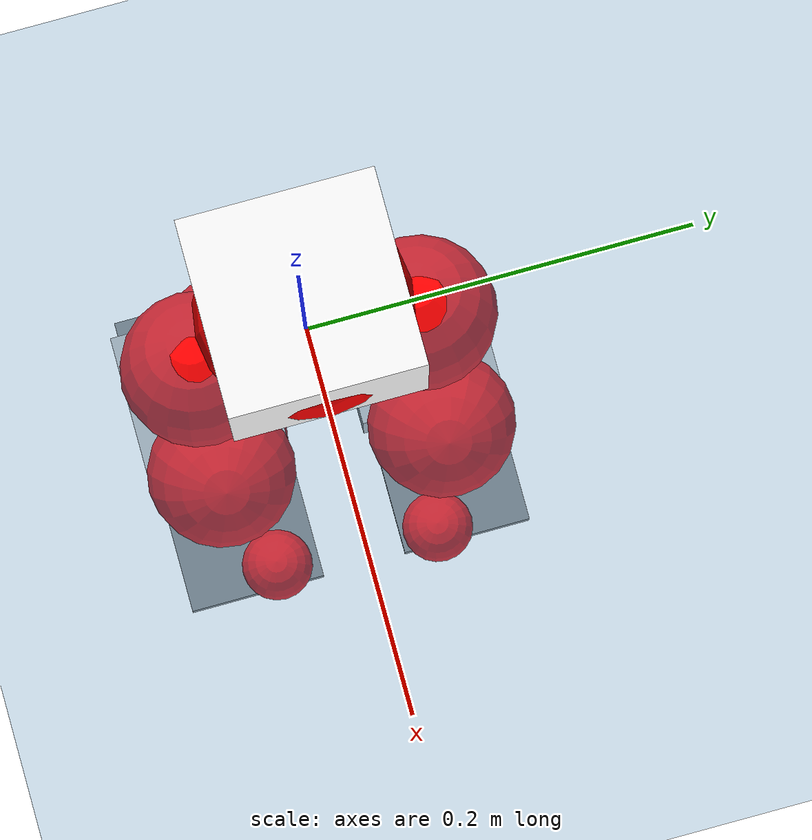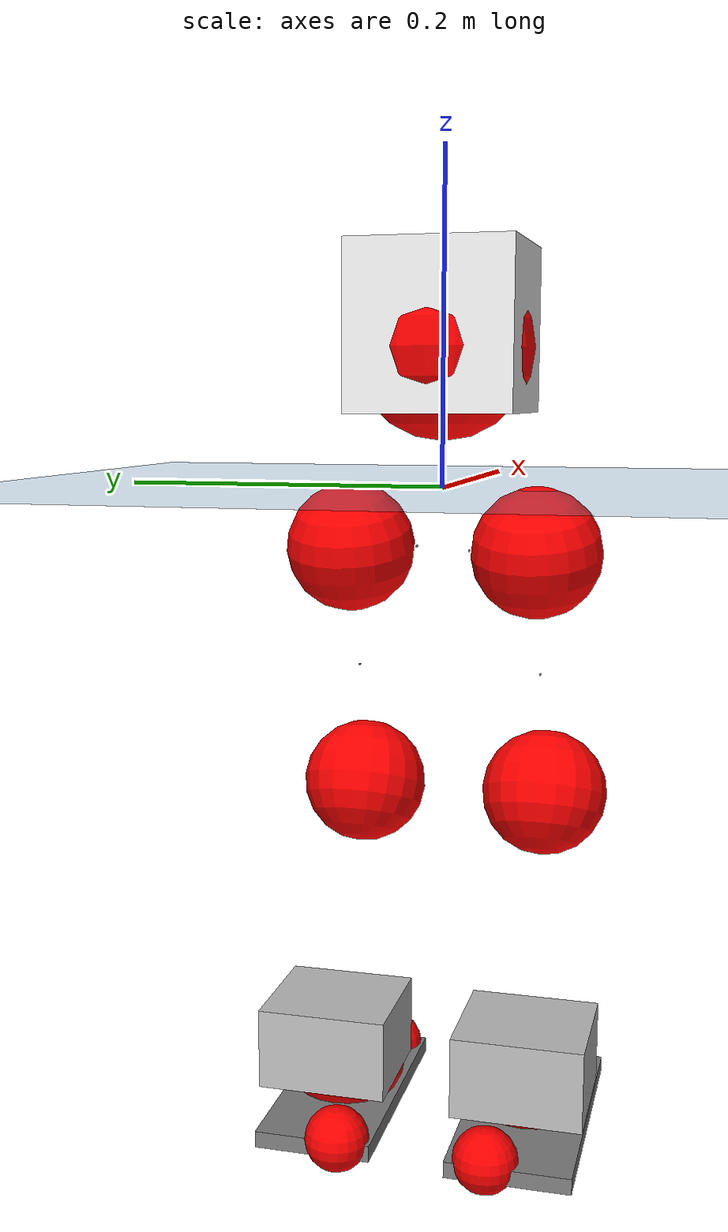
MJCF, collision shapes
<mujoco model="pi_12dof_release_v1">
  <compiler angle="radian" assetdir="assets" balanceinertia="true" inertiafromgeom="false"/>

  <option timestep="0.005" density="1.2" viscosity="2e-05"/>

  <size nkey="1"/>

  <visual>
    <quality shadowsize="8192"/>
    <map shadowclip="0.5"/>
  </visual>

  <default>
    <default class="/">
      <joint armature="0.01" damping="0.01" frictionloss="0.01"/>
      <geom contype="0" conaffinity="0" group="1" solref="-1000 -80"/>
      <site size="0.01 0.005 0.005" group="5"/>
      <general forcelimited="true" biastype="affine" gainprm="20" biasprm="0 -20 -0.5"/>
      <default class="foot">
        <geom size="0.0845 0.036 0.005" type="box" condim="6" group="4" priority="1" friction="0.9 0.2 0.2" solimp="0.015 1 0.005"/>
      </default>
      <default class="reward_collision_sphere">
        <geom group="5" rgba="1 0 0 1"/>
      </default>
    </default>
  </default>

  <asset>
    <texture type="skybox" colorspace="auto" name="//unnamed_texture_0" builtin="gradient" rgb1="0.95 0.95 0.95" rgb2="0.95 0.95 0.95" width="100" height="600"/>
    <texture type="2d" colorspace="auto" name="texplane" builtin="checker" rgb1="0.345 0.575 0.748" rgb2="0.345 0.575 0.748" markrgb="1 1 1" width="512" height="512"/>
    <material name="MatPlane" class="/" texture="texplane" texuniform="true" texrepeat="2 2" specular="0.9"/>
    <mesh name="baselink_1" class="/" file="baselink_1.STL"/>
    <mesh name="r_hip_pitch_link" class="/" file="r_hip_pitch_link.STL"/>
    <mesh name="r_hip_roll_link" class="/" file="r_hip_roll_link.STL"/>
    <mesh name="r_thigh_link" class="/" file="r_thigh_link.STL"/>
    <mesh name="r_calf_link" class="/" file="r_calf_link.STL"/>
    <mesh name="r_ankle_pitch_link" class="/" file="r_ankle_pitch_link.STL"/>
    <mesh name="r_ankle_roll_link" class="/" file="r_ankle_roll_link.STL"/>
    <mesh name="l_hip_pitch_link" class="/" file="l_hip_pitch_link.STL"/>
    <mesh name="l_hip_roll_link" class="/" file="l_hip_roll_link.STL"/>
    <mesh name="l_thigh_link" class="/" file="l_thigh_link.STL"/>
    <mesh name="l_calf_link" class="/" file="l_calf_link.STL"/>
    <mesh name="l_ankle_pitch_link" class="/" file="l_ankle_pitch_link.STL"/>
    <mesh name="l_ankle_roll_link" class="/" file="l_ankle_roll_link.STL"/>
  </asset>

  <worldbody>
    <geom name="floor" class="/" size="100 100 0.125" type="plane" group="0" material="MatPlane"/>
    <light name="toplight_shadow" class="/" pos="0 0 5" dir="0.0990148 0.0990148 -0.990148" type="directional" ambient="0.04 0.04 0.04" diffuse="0.55 0.55 0.55" specular="0.12 0.12 0.12"/>
    <light name="toplight_fill" class="/" pos="0 0 5" dir="0.0990148 0.0990148 -0.990148" type="directional" castshadow="false" ambient="0.04 0.04 0.04" diffuse="0.3 0.3 0.3" specular="0.08 0.08 0.08"/>
    <body name="trunk" pos="0.000317284 1.33845e-05 0.000836756" quat="1 -9.12068e-07 6.23676e-06 4.88866e-06">
      <inertial pos="0.00312554 -0.00261143 0.0474927" quat="0.69341 0.00871862 0.0108434 0.720409" mass="2.06357" diaginertia="0.0136337 0.00178427 0.00884873"/>
      <joint name="//unnamed_joint_0" type="free"/>
      <geom name="//unnamed_geom_1" class="/" type="mesh" density="0" rgba="1 1 1 1" mesh="baselink_1"/>
      <geom name="//unnamed_geom_2" class="/" size="0.0495402 0.0495402 0.0495402" pos="0 0 0.0932795" type="box" rgba="1 1 1 1"/>
      <geom name="//unnamed_geom_3" class="reward_collision_sphere" size="0.0544943" pos="0 0 0.0816195"/>
      <site name="imu" class="/" pos="-0.0026818 0.00109692 0.00105432" size="0.00990805"/>
      <camera name="track" class="/" pos="0 -1.45373 0" quat="0.707107 0.707107 0 0" mode="trackcom"/>
      <camera name="ego_camera" class="/" pos="0.0809666 0 0.209879" quat="-0.5 -0.5 0.5 0.5"/>
      <body name="r_hip_pitch_link" pos="-0.0011968 -0.0169948 -0.0385858" quat="0.992191 0.000122477 -0.12473 -0.000378564">
        <inertial pos="0.00129562 -0.0422156 0.000740887" quat="-0.0185139 0.697761 -0.0294465 0.715486" mass="0.358013" diaginertia="0.000158263 2.00945e-05 0.000178574"/>
        <joint name="r_hip_pitch_joint" class="/" pos="0 0 0" axis="0.000941437 -0.999962 -0.00867344" range="-1.75204 1.2375" armature="0.00974515" damping="0.0220873" frictionloss="0.010792"/>
        <geom name="//unnamed_geom_4" class="/" type="mesh" density="0" rgba="0.75294 0.75294 0.75294 1" mesh="r_hip_pitch_link"/>
        <geom name="//unnamed_geom_5" class="/" size="0.000495402 0.000495402 0.000495402" type="box" rgba="0.75294 0.75294 0.75294 1"/>
        <body name="r_hip_roll_link" pos="0.000896391 -0.0407054 -0.000588797" quat="0.999999 0.000428014 -0.000294076 0.000877979">
          <inertial pos="-0.000938357 0.00175185 -0.0702603" quat="0.709172 -0.0767731 -0.0814009 0.6961" mass="0.373856" diaginertia="0.000480542 5.77597e-05 0.000276063"/>
          <joint name="r_hip_roll_joint" class="/" pos="0 0 0" axis="-0.999993 -0.0036633 0.000263931" range="-0.119879 0.505662" armature="0.0102891" damping="0.0135195" frictionloss="0.00964332"/>
          <geom name="//unnamed_geom_6" class="/" type="mesh" density="0" rgba="0.75294 0.75294 0.75294 1" mesh="r_hip_roll_link"/>
          <geom name="//unnamed_geom_7" class="/" size="0.000495402 0.000495402 0.000495402" type="box" rgba="0.75294 0.75294 0.75294 1"/>
          <geom name="//unnamed_geom_8" class="reward_collision_sphere" size="0.0396322"/>
          <body name="r_thigh_link" pos="-0.000359502 -0.000984727 -0.0797508" quat="1 0.000165844 -0.000236465 4.25086e-05">
            <inertial pos="-0.000931051 0.000636117 -0.0563584" quat="0.734434 0.678676 0.000871308 0.00238986" mass="0.108649" diaginertia="0.00018343 1.9679e-05 0.000124352"/>
            <joint name="r_thigh_joint" class="/" pos="0 0 0" axis="-0.00135417 -0.00345531 -0.999993" range="-0.341434 0.55314" armature="0.0104521" damping="0" frictionloss="0.0108654"/>
            <geom name="//unnamed_geom_9" class="/" type="mesh" density="0" rgba="0.75294 0.75294 0.75294 1" mesh="r_thigh_link"/>
            <geom name="//unnamed_geom_10" class="/" size="0.000495402 0.000495402 0.000495402" type="box" rgba="0.75294 0.75294 0.75294 1"/>
            <body name="r_calf_link" pos="-0.00237439 -0.00171328 -0.0810582" quat="0.947619 -8.06896e-06 0.319402 3.57461e-05">
              <inertial pos="-0.000274962 -0.00186688 -0.0804835" quat="0.999951 -0.00754383 0.00602974 0.0020012" mass="0.798089" diaginertia="0.00512631 0.000709944 0.000370097"/>
              <joint name="r_calf_joint" class="/" pos="0 0 0" axis="-0.0124654 -0.999917 -0.00331788" stiffness="0.00237676" range="-1.63529 0.64356" armature="0.0100265" damping="0.0132888" frictionloss="0.0107226"/>
              <geom name="//unnamed_geom_11" class="/" type="mesh" density="0" rgba="0.75294 0.75294 0.75294 1" mesh="r_calf_link"/>
              <geom name="//unnamed_geom_12" class="/" size="0.000495402 0.000495402 0.000495402" type="box" rgba="0.75294 0.75294 0.75294 1"/>
              <geom name="//unnamed_geom_13" class="reward_collision_sphere" size="0.0396322"/>
              <body name="r_ankle_pitch_link" pos="0.00139943 -0.00052585 -0.165006" quat="0.980068 -1.04512e-05 -0.198662 -5.33857e-06">
                <inertial pos="0.00439942 0.00292061 0.00152607" quat="0.00293732 0.710147 -4.23169e-05 0.704047" mass="0.169551" diaginertia="0.000451247 4.50458e-05 0.000258447"/>
                <joint name="r_ankle_pitch_joint" class="/" pos="0 0 0" axis="0.000418039 -0.999995 -0.00303668" range="-1.29887 0.466355" armature="0.0104267" damping="0.0122292" frictionloss="0.010636"/>
                <geom name="//unnamed_geom_14" class="/" type="mesh" density="0" rgba="0.75294 0.75294 0.75294 1" mesh="r_ankle_pitch_link"/>
                <geom name="//unnamed_geom_15" class="/" size="0.0386414 0.0396322 0.0247701" type="box" rgba="0.75294 0.75294 0.75294 1"/>
                <body name="r_ankle_roll_link" pos="0.0834473 0.00161942 0.00171734" quat="1 0.00010063 2.70512e-05 -3.72695e-06">
                  <inertial pos="-0.0255486 -8.63356e-06 -0.0165127" quat="0.558896 0.434925 0.431701 0.558668" mass="0.517956" diaginertia="0.00172522 0.000215437 0.000629737"/>
                  <joint name="r_ankle_roll_joint" class="/" pos="0 0 0" axis="-0.999943 0.00356631 -0.0100473" range="-0.107249 0.168739" armature="0.00964791" damping="0.00714081" frictionloss="0.00948308"/>
                  <geom name="//unnamed_geom_16" class="/" type="mesh" density="0" rgba="0.75294 0.75294 0.75294 1" mesh="r_ankle_roll_link"/>
                  <geom name="//unnamed_geom_17" class="/" type="mesh" rgba="0.75294 0.75294 0.75294 1" mesh="r_ankle_roll_link"/>
                  <geom name="right_foot" class="foot" size="0.0838536 0.037865 0.00493191" pos="-0.0550573 0 -0.0513037"/>
                  <geom name="//unnamed_geom_19" class="reward_collision_sphere" size="0.0396322" pos="-0.0539777 0 -0.0233199"/>
                  <geom name="//unnamed_geom_20" class="reward_collision_sphere" size="0.0198161" pos="0.0161933 0.0145373 -0.0466397"/>
                  <geom name="//unnamed_geom_21" class="reward_collision_sphere" size="0.0198161" pos="-0.129546 0.0145373 -0.0466397"/>
                  <site name="right_foot" class="foot" pos="-0.0550573 0 -0.0513037" size="0.00990805"/>
                </body>
              </body>
            </body>
          </body>
        </body>
      </body>
      <body name="l_hip_pitch_link" pos="0.00149885 0.0161351 -0.0368466" quat="0.992194 -0.000117807 -0.1247 -9.12287e-05">
        <inertial pos="0.000881182 0.039627 -0.00049725" quat="-0.0377074 0.70645 0.0286259 0.706177" mass="0.373249" diaginertia="0.000190622 2.18226e-05 0.000218275"/>
        <joint name="l_hip_pitch_joint" class="/" pos="0 0 0" axis="0.0021132 0.999995 -0.00251176" stiffness="0.00093405" range="-1.23494 1.77913" armature="0.00975027" damping="0.0149709" frictionloss="0.00996711"/>
        <geom name="//unnamed_geom_22" class="/" type="mesh" density="0" rgba="0.75294 0.75294 0.75294 1" mesh="l_hip_pitch_link"/>
        <geom name="//unnamed_geom_23" class="/" size="0.000495402 0.000495402 0.000495402" type="box" rgba="0.75294 0.75294 0.75294 1"/>
        <body name="l_hip_roll_link" pos="0.000154897 0.0417601 -0.00138356" quat="1 0.000685362 -0.000559361 0.000280302">
          <inertial pos="-0.00189571 0.00219556 -0.0718562" quat="0.700014 -0.0733261 -0.0800239 0.705833" mass="0.368747" diaginertia="0.000493106 5.59941e-05 0.000282271"/>
          <joint name="l_hip_roll_joint" class="/" pos="0 0 0" axis="-0.999999 0.00100462 0.000586591" range="-0.495394 0.101874" armature="0.0109503" damping="0.00567234" frictionloss="0.0102076"/>
          <geom name="//unnamed_geom_24" class="/" type="mesh" density="0" rgba="0.75294 0.75294 0.75294 1" mesh="l_hip_roll_link"/>
          <geom name="//unnamed_geom_25" class="/" size="0.000495402 0.000495402 0.000495402" type="box" rgba="0.75294 0.75294 0.75294 1"/>
          <geom name="//unnamed_geom_26" class="reward_collision_sphere" size="0.0396322"/>
          <body name="l_thigh_link" pos="0.00145412 -0.000212698 -0.0805992" quat="1 -0.000249924 7.93497e-05 0.000219591">
            <inertial pos="-8.5967e-05 -0.00052498 -0.0559001" quat="0.674652 0.738135 -0.000268535 -0.00126654" mass="0.111098" diaginertia="0.000183167 1.91703e-05 0.000124122"/>
            <joint name="l_thigh_joint" class="/" pos="0 0 0" axis="0.000160579 0.000716021 -1" range="-0.616897 0.290651" armature="0.0102331" damping="0" frictionloss="0.00945965"/>
            <geom name="//unnamed_geom_27" class="/" type="mesh" density="0" rgba="0.75294 0.75294 0.75294 1" mesh="l_thigh_link"/>
            <geom name="//unnamed_geom_28" class="/" size="0.000495402 0.000495402 0.000495402" type="box" rgba="0.75294 0.75294 0.75294 1"/>
            <body name="l_calf_link" pos="-0.00207853 0.00103301 -0.0831538" quat="0.947335 -7.76965e-06 0.320244 0.000595544">
              <inertial pos="0.000916195 0.00336871 -0.0805705" quat="0.999979 0.00357905 0.00047723 0.0053278" mass="0.801111" diaginertia="0.00522088 0.000709908 0.000390947"/>
              <joint name="l_calf_joint" class="/" pos="0 0 0" axis="0.00196798 0.999998 0.000399306" range="-0.625853 1.66966" armature="0.0104228" damping="0.00590244" frictionloss="0.00956071"/>
              <geom name="//unnamed_geom_29" class="/" type="mesh" density="0" rgba="0.75294 0.75294 0.75294 1" mesh="l_calf_link"/>
              <geom name="//unnamed_geom_30" class="/" size="0.000495402 0.000495402 0.000495402" type="box" rgba="0.75294 0.75294 0.75294 1"/>
              <geom name="//unnamed_geom_31" class="reward_collision_sphere" size="0.0396322"/>
              <body name="l_ankle_pitch_link" pos="0.000230757 0.00185987 -0.161909" quat="0.980147 -0.000192961 -0.198272 -0.000232084">
                <inertial pos="0.00520289 -0.00126551 -0.000376227" quat="-0.00218779 0.708272 0.00277273 0.705931" mass="0.168744" diaginertia="0.000446283 4.52411e-05 0.000257465"/>
                <joint name="l_ankle_pitch_joint" class="/" pos="0 0 0" axis="-0.00261393 0.999996 -0.000661475" stiffness="0.00683086" range="-0.512024 1.30791" armature="0.00920766" damping="0.0135442" frictionloss="0.010053"/>
                <geom name="//unnamed_geom_32" class="/" type="mesh" density="0" rgba="0.75294 0.75294 0.75294 1" mesh="l_ankle_pitch_link"/>
                <geom name="//unnamed_geom_33" class="/" size="0.0386414 0.0396322 0.0247701" type="box" rgba="0.75294 0.75294 0.75294 1"/>
                <body name="l_ankle_roll_link" pos="0.081479 0.00129044 -0.000607674" quat="1 2.50914e-05 0.000154574 -9.83026e-05">
                  <inertial pos="-0.0258758 -1.48478e-05 -0.0166057" quat="0.559852 0.431343 0.434002 0.558705" mass="0.503684" diaginertia="0.00164217 0.00020671 0.000605613"/>
                  <joint name="l_ankle_roll_joint" class="/" pos="0 0 0" axis="-1 0.00019765 6.99799e-05" range="-0.112968 0.150777" armature="0.00974265" damping="0" frictionloss="0.0104006"/>
                  <geom name="//unnamed_geom_34" class="/" type="mesh" density="0" rgba="0.75294 0.75294 0.75294 1" mesh="l_ankle_roll_link"/>
                  <geom name="//unnamed_geom_35" class="/" type="mesh" rgba="0.75294 0.75294 0.75294 1" mesh="l_ankle_roll_link"/>
                  <geom name="left_foot" class="foot" size="0.0805589 0.0360115 0.00510414" pos="-0.0550573 0 -0.0513037"/>
                  <geom name="//unnamed_geom_37" class="reward_collision_sphere" size="0.0396322" pos="-0.0539777 0 -0.0233199"/>
                  <geom name="//unnamed_geom_38" class="reward_collision_sphere" size="0.0198161" pos="0.0161933 -0.0145373 -0.0466397"/>
                  <geom name="//unnamed_geom_39" class="reward_collision_sphere" size="0.0198161" pos="-0.129546 -0.0145373 -0.0466397"/>
                  <site name="left_foot" class="foot" pos="-0.0550573 0 -0.0513037" size="0.00990805"/>
                </body>
              </body>
            </body>
          </body>
        </body>
      </body>
    </body>
  </worldbody>

  <contact>
    <pair class="/" geom1="floor" geom2="right_foot" name="//unnamed_contact_1"/>
    <pair class="/" geom1="floor" geom2="left_foot" name="//unnamed_contact_0"/>
  </contact>

  <actuator>
    <general name="r_hip_pitch_joint" class="/" joint="r_hip_pitch_joint" forcerange="-21.6079 21.6079" gainprm="20.3101" biasprm="0 -20.3101 -0.477757"/>
    <general name="r_hip_roll_joint" class="/" joint="r_hip_roll_joint" forcerange="-22.5064 22.5064" gainprm="20.3101" biasprm="0 -20.3101 -0.477757"/>
    <general name="r_thigh_joint" class="/" joint="r_thigh_joint" forcerange="-20.8665 20.8665" gainprm="20.3101" biasprm="0 -20.3101 -0.477757"/>
    <general name="r_calf_joint" class="/" joint="r_calf_joint" forcerange="-21.0343 21.0343" gainprm="20.3101" biasprm="0 -20.3101 -0.477757"/>
    <general name="r_ankle_pitch_joint" class="/" joint="r_ankle_pitch_joint" forcerange="-20.7262 20.7262" gainprm="20.3101" biasprm="0 -20.3101 -0.477757"/>
    <general name="r_ankle_roll_joint" class="/" joint="r_ankle_roll_joint" forcerange="-21.2371 21.2371" gainprm="20.3101" biasprm="0 -20.3101 -0.477757"/>
    <general name="l_hip_pitch_joint" class="/" joint="l_hip_pitch_joint" forcerange="-20.1063 20.1063" gainprm="20.3101" biasprm="0 -20.3101 -0.477757"/>
    <general name="l_hip_roll_joint" class="/" joint="l_hip_roll_joint" forcerange="-20.6565 20.6565" gainprm="20.3101" biasprm="0 -20.3101 -0.477757"/>
    <general name="l_thigh_joint" class="/" joint="l_thigh_joint" forcerange="-20.8084 20.8084" gainprm="20.3101" biasprm="0 -20.3101 -0.477757"/>
    <general name="l_calf_joint" class="/" joint="l_calf_joint" forcerange="-21.4294 21.4294" gainprm="20.3101" biasprm="0 -20.3101 -0.477757"/>
    <general name="l_ankle_pitch_joint" class="/" joint="l_ankle_pitch_joint" forcerange="-20.8814 20.8814" gainprm="20.3101" biasprm="0 -20.3101 -0.477757"/>
    <general name="l_ankle_roll_joint" class="/" joint="l_ankle_roll_joint" forcerange="-20.461 20.461" gainprm="20.3101" biasprm="0 -20.3101 -0.477757"/>
  </actuator>

  <sensor>
    <gyro site="imu" name="imu_angular_velocity"/>
    <velocimeter site="imu" name="imu_linear_velocity"/>
    <framelinvel objtype="site" objname="left_foot" name="left_foot_global_linear_velocity"/>
    <framelinvel objtype="site" objname="right_foot" name="right_foot_global_linear_velocity"/>
  </sensor>

  <keyframe>
    <key name="home" qpos="0 0 0.291 1 0 0 0 0.4 0 0 -0.8 0.4 0 -0.4 0 0 0.8 -0.4 0"/>
  </keyframe>
</mujoco>
